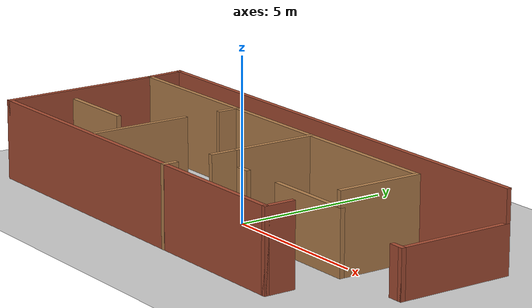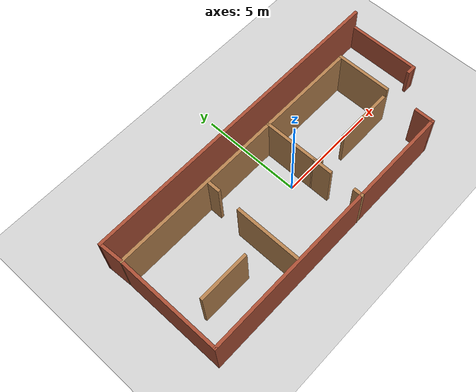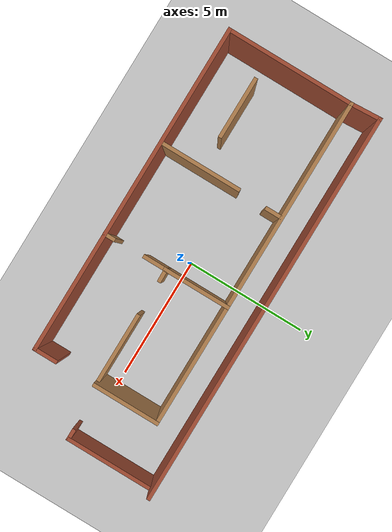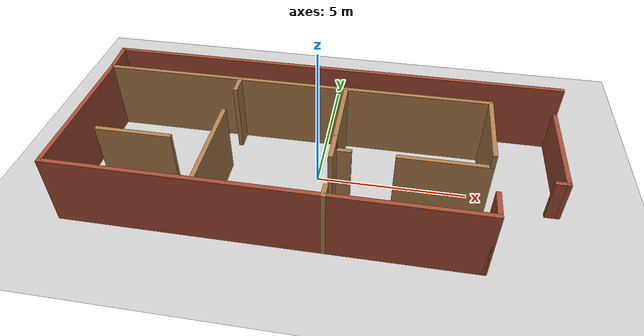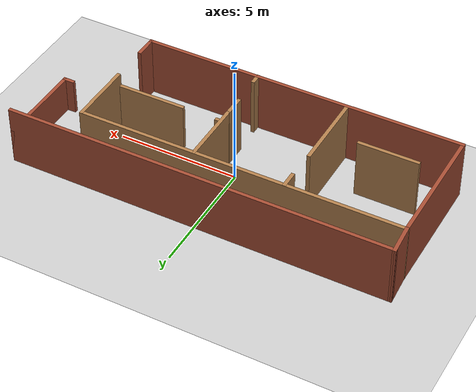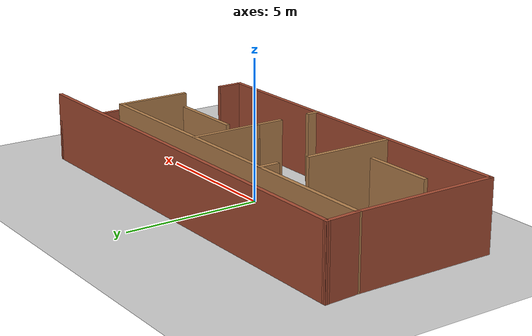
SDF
<sdf version="1.7">
 <world name="default">
  <light name="sun" type="directional">
   <pose>0 0 10 0 -0 0</pose>
   <diffuse>0.8 0.8 0.8 1</diffuse>
   <specular>0.2 0.2 0.2 1</specular>
   <attenuation>
    <range>1000</range>
    <constant>0.9</constant>
    <linear>0.01</linear>
    <quadratic>0.001</quadratic>
   </attenuation>
   <direction>-0.5 0.1 -0.9</direction>
   <spot><inner_angle>0</inner_angle><outer_angle>0</outer_angle><falloff>0</falloff></spot>
  </light>
  <model name="ground_plane">
   <static>1</static>
   <link name="link">
    <collision name="collision">
     <geometry><plane><normal>0 0 1</normal><size>100 100</size></plane></geometry>
     <surface>
      <contact><collide_bitmask>65535</collide_bitmask></contact>
      <friction><ode><mu>100</mu><mu2>50</mu2></ode></friction>
     </surface>
    </collision>
    <visual name="visual">
     <cast_shadows>0</cast_shadows>
     <geometry><plane><normal>0 0 1</normal><size>100 100</size></plane></geometry>
     <material>
      <script><uri>file://media/materials/scripts/gazebo.material</uri><name>Gazebo/Grey</name></script>
     </material>
    </visual>
   </link>
  </model>
  <gravity>0 0 -9.8</gravity>
  <magnetic_field>6e-06 2.3e-05 -4.2e-05</magnetic_field>
  <atmosphere type="adiabatic"/>
  <physics type="ode">
   <max_step_size>0.001</max_step_size>
   <real_time_factor>1</real_time_factor>
   <real_time_update_rate>1000</real_time_update_rate>
  </physics>
  <scene><ambient>0.4 0.4 0.4 1</ambient><background>0.7 0.7 0.7 1</background><shadows>1</shadows></scene>
  <spherical_coordinates>
   <surface_model>EARTH_WGS84</surface_model>
   <latitude_deg>0</latitude_deg>
   <longitude_deg>0</longitude_deg>
   <elevation>0</elevation>
   <heading_deg>0</heading_deg>
  </spherical_coordinates>
  <model name="rmp04Wall">
   <pose>-0.00801 0.004604 0 0 -0 0</pose>
   <link name="Wall_10">
    <collision name="Wall_10_Collision">
     <geometry><box><size>13.5 0.15 2.5</size></box></geometry>
     <pose>0 0 1.25 0 -0 0</pose>
    </collision>
    <visual name="Wall_10_Visual">
     <pose>0 0 1.25 0 -0 0</pose>
     <geometry><box><size>13.5 0.15 2.5</size></box></geometry>
     <material>
      <script><uri>file://media/materials/scripts/gazebo.material</uri><name>Gazebo/Bricks</name></script>
      <ambient>1 1 1 1</ambient>
     </material>
     <meta><layer>0</layer></meta>
    </visual>
    <pose>-1.17797 -3.12976 0 0 -0 0</pose>
   </link>
   <link name="Wall_11">
    <collision name="Wall_11_Collision">
     <geometry><box><size>1 0.15 2.5</size></box></geometry>
     <pose>0 0 1.25 0 -0 0</pose>
    </collision>
    <visual name="Wall_11_Visual">
     <pose>0 0 1.25 0 -0 0</pose>
     <geometry><box><size>1 0.15 2.5</size></box></geometry>
     <material>
      <script><uri>file://media/materials/scripts/gazebo.material</uri><name>Gazebo/Bricks</name></script>
      <ambient>1 1 1 1</ambient>
     </material>
     <meta><layer>0</layer></meta>
    </visual>
    <pose>5.49703 -2.70476 0 0 -0 1.5708</pose>
   </link>
   <link name="Wall_13">
    <collision name="Wall_13_Collision">
     <geometry><box><size>2.75 0.15 2.5</size></box></geometry>
     <pose>0 0 1.25 0 -0 0</pose>
    </collision>
    <visual name="Wall_13_Visual">
     <pose>0 0 1.25 0 -0 0</pose>
     <geometry><box><size>2.75 0.15 2.5</size></box></geometry>
     <material>
      <script><uri>file://media/materials/scripts/gazebo.material</uri><name>Gazebo/Wood</name></script>
      <ambient>1 1 1 1</ambient>
     </material>
     <meta><layer>0</layer></meta>
    </visual>
    <pose>5.49711 0.670028 0 0 -0 -1.57074</pose>
   </link>
   <link name="Wall_15">
    <collision name="Wall_15_Collision">
     <geometry><box><size>2.75 0.15 2.5</size></box></geometry>
     <pose>0 0 1.25 0 -0 0</pose>
    </collision>
    <visual name="Wall_15_Visual">
     <pose>0 0 1.25 0 -0 0</pose>
     <geometry><box><size>2.75 0.15 2.5</size></box></geometry>
     <material>
      <script><uri>file://media/materials/scripts/gazebo.material</uri><name>Gazebo/Wood</name></script>
      <ambient>1 1 1 1</ambient>
     </material>
     <meta><layer>0</layer></meta>
    </visual>
    <pose>0.64711 0.670028 0 0 -0 1.57086</pose>
   </link>
   <link name="Wall_17">
    <collision name="Wall_17_Collision">
     <geometry><box><size>0.75 0.15 2.5</size></box></geometry>
     <pose>0 0 1.25 0 -0 0</pose>
    </collision>
    <visual name="Wall_17_Visual">
     <pose>0 0 1.25 0 -0 0</pose>
     <geometry><box><size>0.75 0.15 2.5</size></box></geometry>
     <material>
      <script><uri>file://media/materials/scripts/gazebo.material</uri><name>Gazebo/Wood</name></script>
      <ambient>1 1 1 1</ambient>
     </material>
     <meta><layer>0</layer></meta>
    </visual>
    <pose>-3.08896 1.65555 0 0 -0 -1.5708</pose>
   </link>
   <link name="Wall_19">
    <collision name="Wall_19_Collision">
     <geometry><box><size>3.25 0.15 2.5</size></box></geometry>
     <pose>0 0 1.25 0 -0 0</pose>
    </collision>
    <visual name="Wall_19_Visual">
     <pose>0 0 1.25 0 -0 0</pose>
     <geometry><box><size>3.25 0.15 2.5</size></box></geometry>
     <material>
      <script><uri>file://media/materials/scripts/gazebo.material</uri><name>Gazebo/Wood</name></script>
      <ambient>1 1 1 1</ambient>
     </material>
     <meta><layer>0</layer></meta>
    </visual>
    <pose>-3.1493 -1.4449 0 0 -0 -1.5708</pose>
   </link>
   <link name="Wall_21">
    <collision name="Wall_21_Collision">
     <geometry><box><size>0.5 0.15 2.5</size></box></geometry>
     <pose>0 0 1.25 0 -0 0</pose>
    </collision>
    <visual name="Wall_21_Visual">
     <pose>0 0 1.25 0 -0 0</pose>
     <geometry><box><size>0.5 0.15 2.5</size></box></geometry>
     <material>
      <script><uri>file://media/materials/scripts/gazebo.material</uri><name>Gazebo/Wood</name></script>
      <ambient>1 1 1 1</ambient>
     </material>
     <meta><layer>0</layer></meta>
    </visual>
    <pose>0.692391 -2.95819 0 0 -0 1.5708</pose>
   </link>
   <link name="Wall_23">
    <collision name="Wall_23_Collision">
     <geometry><box><size>1 0.15 2.5</size></box></geometry>
     <pose>0 0 1.25 0 -0 0</pose>
    </collision>
    <visual name="Wall_23_Visual">
     <pose>0 0 1.25 0 -0 0</pose>
     <geometry><box><size>1 0.15 2.5</size></box></geometry>
     <material>
      <script><uri>file://media/materials/scripts/gazebo.material</uri><name>Gazebo/Wood</name></script>
      <ambient>1 1 1 1</ambient>
     </material>
     <meta><layer>0</layer></meta>
    </visual>
    <pose>0.64711 -1.05497 0 0 -0 -1.57098</pose>
   </link>
   <link name="Wall_26">
    <collision name="Wall_26_Collision">
     <geometry><box><size>3 0.15 2</size></box></geometry>
     <pose>0 0 1 0 -0 0</pose>
    </collision>
    <visual name="Wall_26_Visual">
     <pose>0 0 1 0 -0 0</pose>
     <geometry><box><size>3 0.15 2</size></box></geometry>
     <material>
      <script><uri>file://media/materials/scripts/gazebo.material</uri><name>Gazebo/Wood</name></script>
      <ambient>1 1 1 1</ambient>
     </material>
     <meta><layer>0</layer></meta>
    </visual>
    <pose>4.07219 -0.630188 0 0 -0 3.14159</pose>
   </link>
   <link name="Wall_30">
    <collision name="Wall_30_Collision">
     <geometry><box><size>0.617869 0.15 2</size></box></geometry>
     <pose>0 0 1 0 -0 0</pose>
    </collision>
    <visual name="Wall_30_Visual">
     <pose>0 0 1 0 -0 0</pose>
     <geometry><box><size>0.617869 0.15 2</size></box></geometry>
     <material>
      <script><uri>file://media/materials/scripts/gazebo.material</uri><name>Gazebo/Wood</name></script>
      <ambient>1 1 1 1</ambient>
     </material>
     <meta><layer>0</layer></meta>
    </visual>
    <pose>0.881188 -0.624688 0 0 -0 -3.11809</pose>
   </link>
   <link name="Wall_34">
    <collision name="Wall_34_Collision">
     <geometry><box><size>2.5 0.15 2.5</size></box></geometry>
     <pose>0 0 1.25 0 -0 0</pose>
    </collision>
    <visual name="Wall_34_Visual">
     <pose>0 0 1.25 0 -0 0</pose>
     <geometry><box><size>2.5 0.15 2.5</size></box></geometry>
     <material>
      <script><uri>file://media/materials/scripts/gazebo.material</uri><name>Gazebo/Wood</name></script>
      <ambient>1 1 1 1</ambient>
     </material>
     <meta><layer>0</layer></meta>
    </visual>
    <pose>-5.63057 -1.4199 0 0 -0 0</pose>
   </link>
   <link name="Wall_38">
    <collision name="Wall_38_Collision">
     <geometry><box><size>16 0.15 2.5</size></box></geometry>
     <pose>0 0 1.25 0 -0 0</pose>
    </collision>
    <visual name="Wall_38_Visual">
     <pose>0 0 1.25 0 -0 0</pose>
     <geometry><box><size>16 0.15 2.5</size></box></geometry>
     <material>
      <script><uri>file://media/materials/scripts/gazebo.material</uri><name>Gazebo/Bricks</name></script>
      <ambient>0.921569 0.807843 0.615686 1</ambient>
     </material>
     <meta><layer>0</layer></meta>
    </visual>
    <pose>0.002188 3.12881 0 0 -0 0</pose>
   </link>
   <link name="Wall_39">
    <collision name="Wall_39_Collision">
     <geometry><box><size>3.75 0.15 1.5</size></box></geometry>
     <pose>0 0 0.75 0 -0 0</pose>
    </collision>
    <visual name="Wall_39_Visual">
     <pose>0 0 0.75 0 -0 0</pose>
     <geometry><box><size>3.75 0.15 1.5</size></box></geometry>
     <material>
      <script><uri>file://media/materials/scripts/gazebo.material</uri><name>Gazebo/Bricks</name></script>
      <ambient>0.921569 0.807843 0.615686 1</ambient>
     </material>
     <meta><layer>0</layer></meta>
    </visual>
    <pose>7.92719 1.32881 0 0 -0 -1.5708</pose>
   </link>
   <link name="Wall_40">
    <collision name="Wall_40_Collision">
     <geometry><box><size>0.5 0.15 1.5</size></box></geometry>
     <pose>0 0 0.75 0 -0 0</pose>
    </collision>
    <visual name="Wall_40_Visual">
     <pose>0 0 0.75 0 -0 0</pose>
     <geometry><box><size>0.5 0.15 1.5</size></box></geometry>
     <material>
      <script><uri>file://media/materials/scripts/gazebo.material</uri><name>Gazebo/Bricks</name></script>
      <ambient>0.921569 0.807843 0.615686 1</ambient>
     </material>
     <meta><layer>0</layer></meta>
    </visual>
    <pose>7.75219 -0.471188 0 0 -0 3.14159</pose>
   </link>
   <link name="Wall_42">
    <collision name="Wall_42_Collision">
     <geometry><box><size>1.31067 0.15 2.5</size></box></geometry>
     <pose>0 0 1.25 0 -0 0</pose>
    </collision>
    <visual name="Wall_42_Visual">
     <pose>0 0 1.25 0 -0 0</pose>
     <geometry><box><size>1.31067 0.15 2.5</size></box></geometry>
     <material>
      <script><uri>file://media/materials/scripts/gazebo.material</uri><name>Gazebo/Bricks</name></script>
      <ambient>1 1 1 1</ambient>
     </material>
     <meta><layer>0</layer></meta>
    </visual>
    <pose>-7.88789 2.54953 0 0 -0 -1.51059</pose>
   </link>
   <link name="Wall_8">
    <collision name="Wall_8_Collision">
     <geometry><box><size>13.5 0.15 2.5</size></box></geometry>
     <pose>0 0 1.25 0 -0 0</pose>
    </collision>
    <visual name="Wall_8_Visual">
     <pose>0 0 1.25 0 -0 0</pose>
     <geometry><box><size>13.5 0.15 2.5</size></box></geometry>
     <material>
      <script><uri>file://media/materials/scripts/gazebo.material</uri><name>Gazebo/Wood</name></script>
      <ambient>1 1 1 1</ambient>
     </material>
     <meta><layer>0</layer></meta>
    </visual>
    <pose>-1.17797 1.97024 0 0 -0 3.14159</pose>
   </link>
   <link name="Wall_9">
    <collision name="Wall_9_Collision">
     <geometry><box><size>5.25 0.15 2.5</size></box></geometry>
     <pose>0 0 1.25 0 -0 0</pose>
    </collision>
    <visual name="Wall_9_Visual">
     <pose>0 0 1.25 0 -0 0</pose>
     <geometry><box><size>5.25 0.15 2.5</size></box></geometry>
     <material>
      <script><uri>file://media/materials/scripts/gazebo.material</uri><name>Gazebo/Bricks</name></script>
      <ambient>1 1 1 1</ambient>
     </material>
     <meta><layer>0</layer></meta>
    </visual>
    <pose>-7.85297 -0.579756 0 0 -0 -1.5708</pose>
   </link>
   <static>1</static>
  </model>
 </world>
</sdf>
